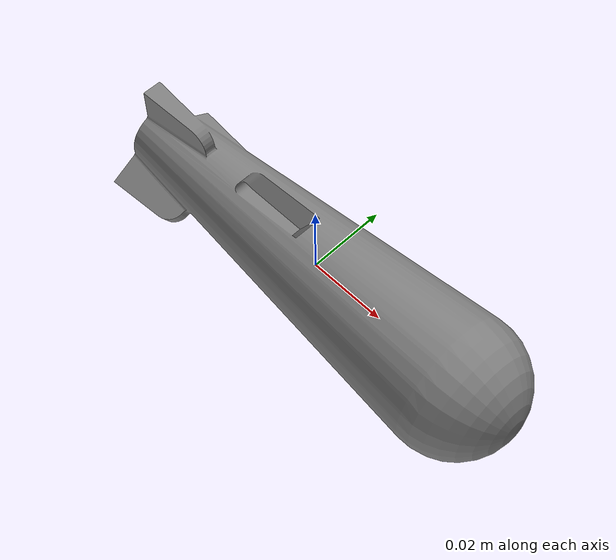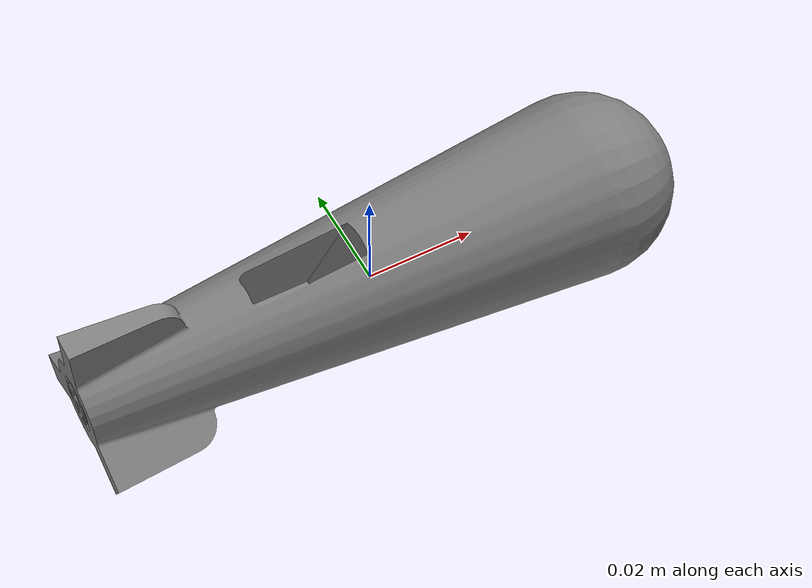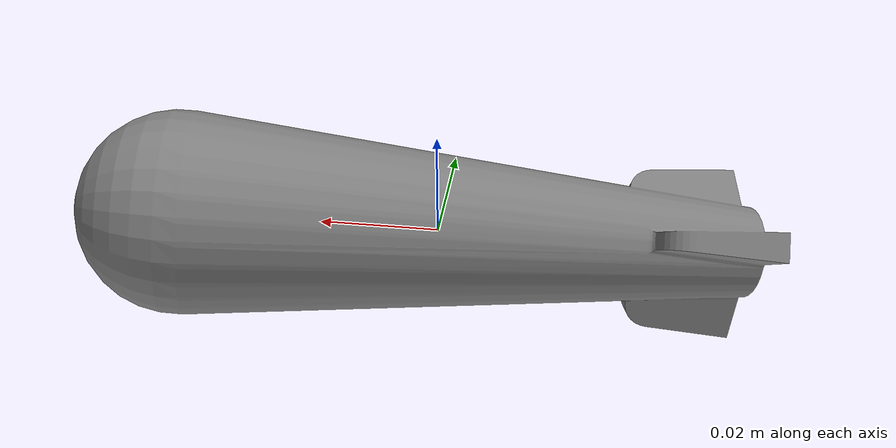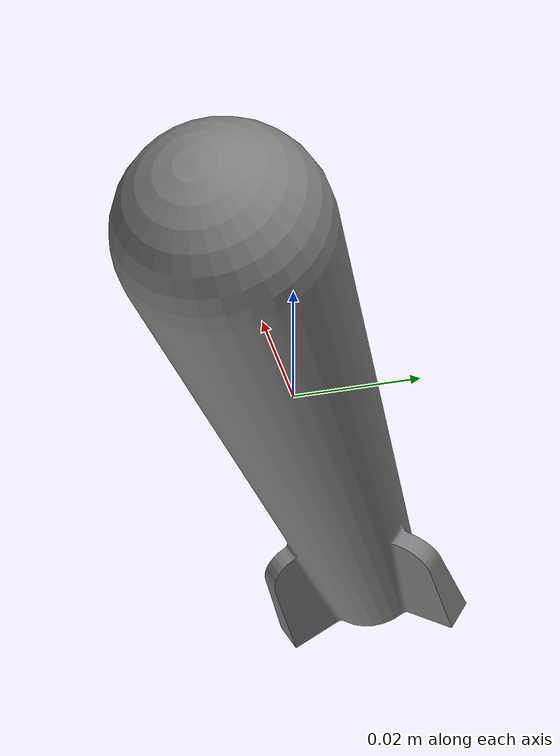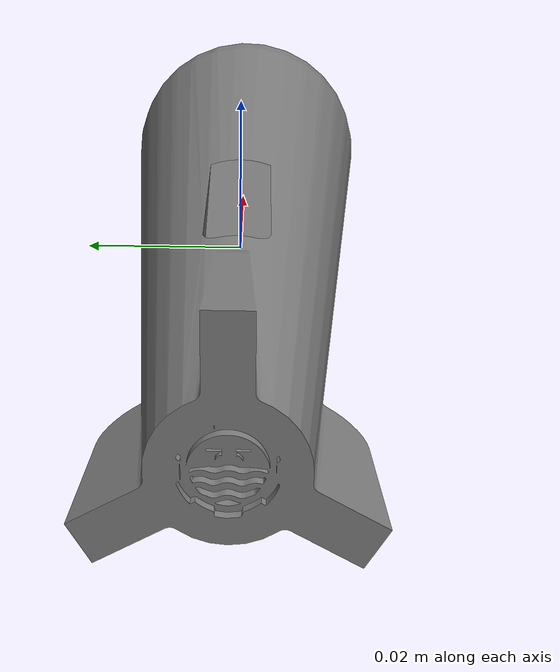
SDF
<?xml version='1.0'?>
<sdf version='1.7'>
  <model name='steelhead_torpedo'>
    <link name='torpedo'>
      <pose>-0 0 0 0 -0 0</pose>
      <inertial>
        <mass>0.15</mass>
        <inertia>
          <ixx>0.01</ixx>
          <ixy>0</ixy>
          <ixz>0</ixz>
          <iyy>0.01</iyy>
          <iyz>0</iyz>
          <izz>0.01</izz>
        </inertia>
      </inertial>

      <gravity>1</gravity>

      <!-- Visual Data -->
      <visual name='visual'>
        <pose>0 0 0 0 -0 0</pose>
        <geometry>
          <mesh>
            <uri>model://steelhead_torpedo/meshes/steelhead_torpedo.stl</uri>
            <scale>0.001 0.001 0.001</scale>
          </mesh>
        </geometry>
        <material>
          <ambient>0.5 0.5 0.5 1</ambient>
          <diffuse>0.5 0.5 0.5 1</diffuse>
          <specular>0.5 0.5 0.5 1</specular>
          <pbr>
            <metal>
              <roughness>0.6</roughness>
              <metalness>0.1</metalness>
            </metal>
          </pbr>
        </material>
        <transparency>0</transparency>
        <cast_shadows>1</cast_shadows>
      </visual>

      <!-- Collision Data-->
      <collision name='collision'>
        <pose>0 0 0 0 0 0</pose> <geometry>
          <cylinder>
            <radius>0.02</radius>
            <length>0.15</length>
          </cylinder>
        </geometry>
        <surface>
          <contact>
            <collide_bitmask>2</collide_bitmask>
            <ode>
              <min_depth>0.001</min_depth>
              <max_vel>0.1</max_vel>
            </ode>
          </contact>
        </surface>
      </collision>

    </link>
    <static>0</static>
    <allow_auto_disable>1</allow_auto_disable>

    <plugin name="steelhead_gazebo::TorpedoPlugin" filename="torpedo_plugin">
      <ros>
        <namespace>/torpedo</namespace>
      </ros>
      <link_name>torpedo</link_name>
      <initial_force>5</initial_force>
      <force_duration>0.5</force_duration>
      <lifetime>15.0</lifetime>
    </plugin>

    <plugin
      filename="gz-sim-hydrodynamics-system"
      name="gz::sim::systems::Hydrodynamics">
      <link_name>torpedo</link_name>
      <xUabsU>-0.05</xUabsU>
      <xU>-0.25</xU>
      <yVabsV>-5.0</yVabsV>
      <yV>-0.1</yV>
      <zWabsW>-5.0</zWabsW>
      <zW>-0.1</zW>
      <kPabsP>-0.01</kPabsP>
      <mQabsQ>-0.1</mQabsQ>
      <nRabsR>-0.1</nRabsR>
    </plugin>
  </model>
</sdf>
